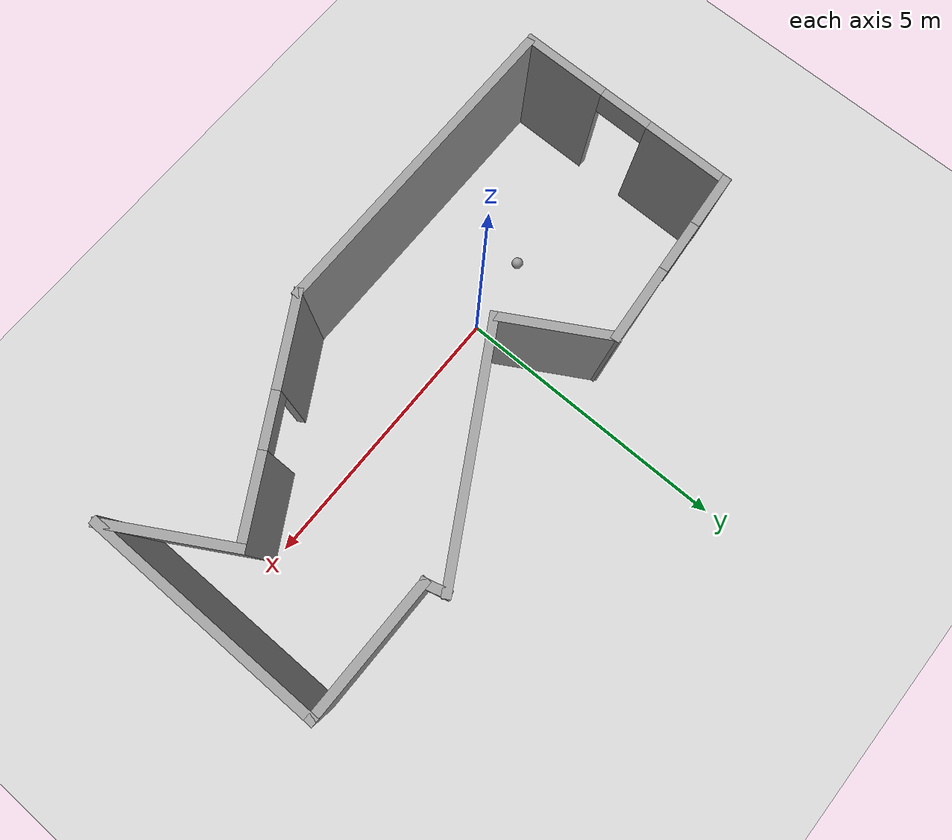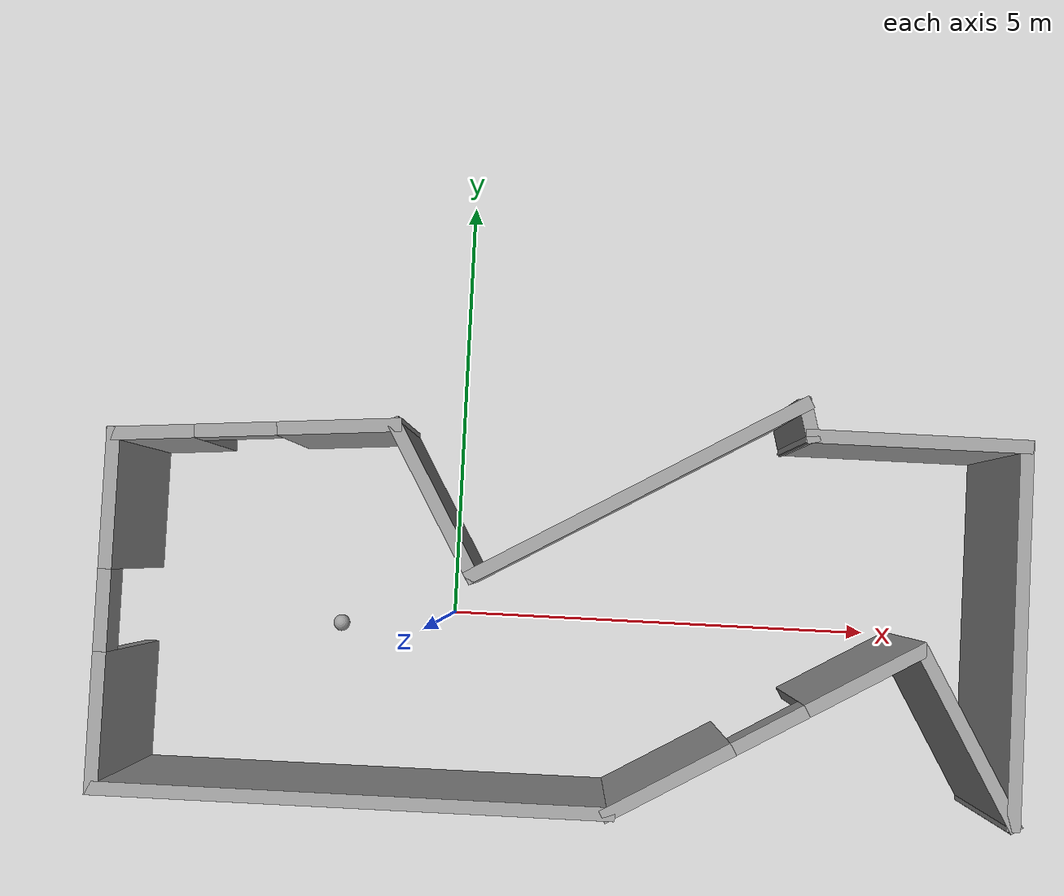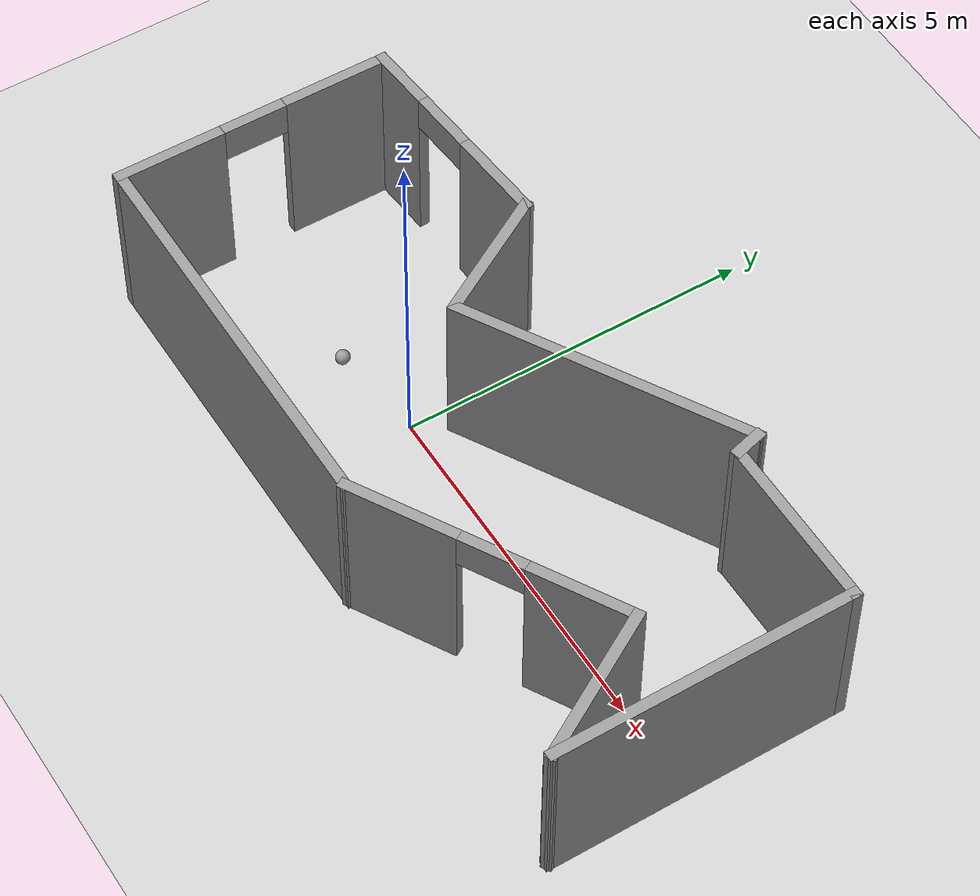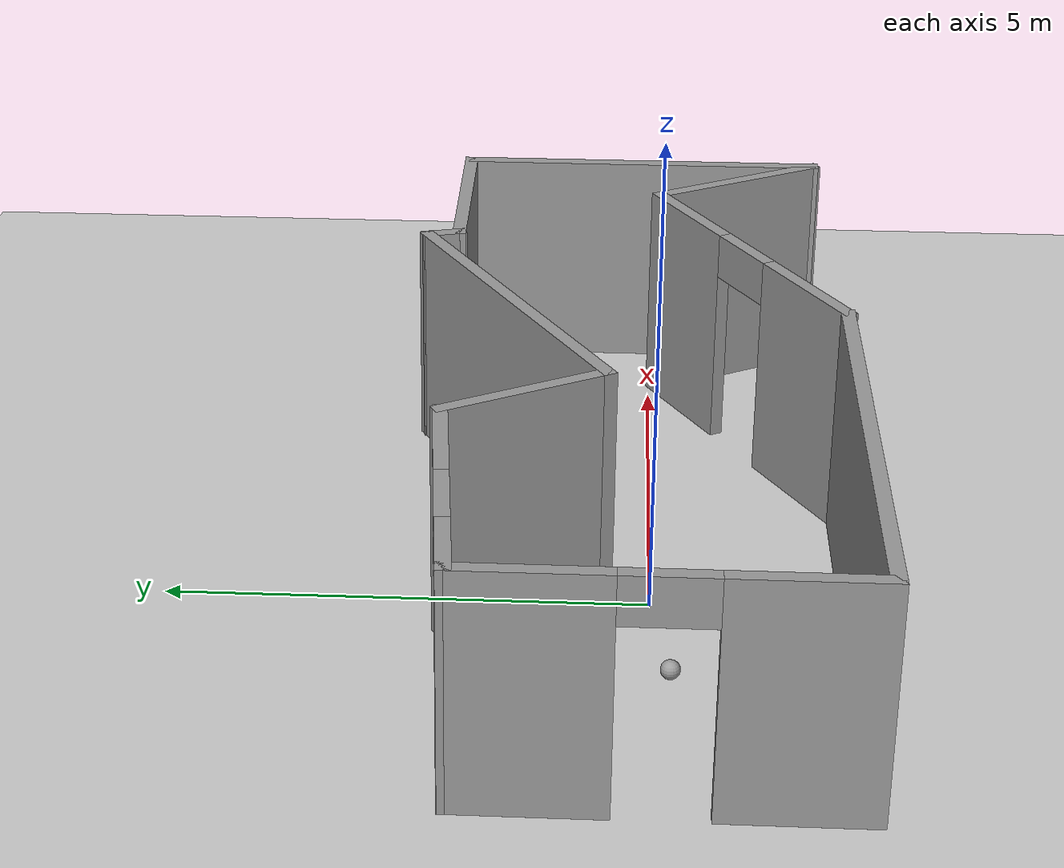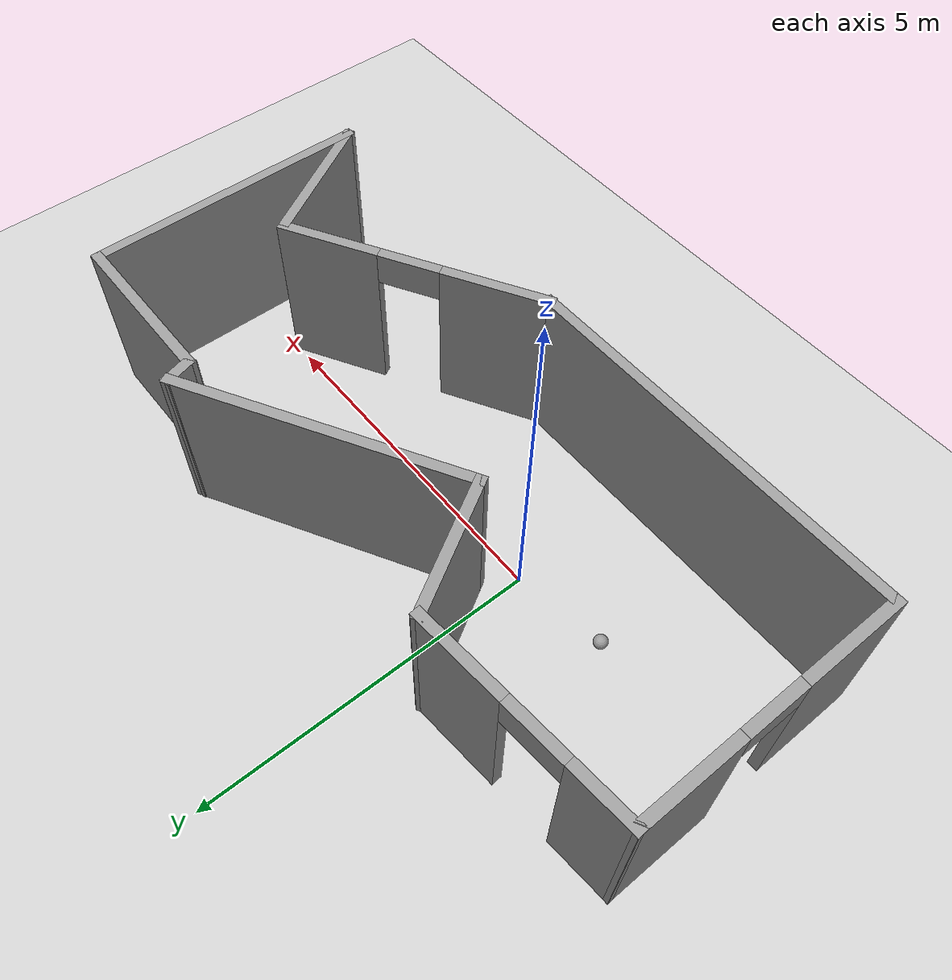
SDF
<sdf version="1.6">
 <world name="default">
  <light name="sun" type="directional">
   <pose>0 0 10 0 -0 0</pose>
   <diffuse>0.8 0.8 0.8 1</diffuse>
   <specular>0.2 0.2 0.2 1</specular>
   <attenuation>
    <range>1000</range>
    <constant>0.9</constant>
    <linear>0.01</linear>
    <quadratic>0.001</quadratic>
   </attenuation>
   <direction>-0.5 0.1 -0.9</direction>
  </light>
  <model name="ground_plane">
   <static>1</static>
   <link name="link">
    <collision name="collision">
     <geometry><plane><normal>0 0 1</normal><size>100 100</size></plane></geometry>
     <surface><friction><ode><mu>100</mu><mu2>50</mu2></ode></friction></surface>
    </collision>
    <visual name="visual">
     <cast_shadows>0</cast_shadows>
     <geometry><plane><normal>0 0 1</normal><size>100 100</size></plane></geometry>
     <material>
      <script><uri>file://media/materials/scripts/gazebo.material</uri><name>Gazebo/Grey</name></script>
     </material>
    </visual>
   </link>
  </model>
  <gravity>0 0 -9.8</gravity>
  <magnetic_field>6e-06 2.3e-05 -4.2e-05</magnetic_field>
  <atmosphere type="adiabatic"/>
  <physics name="default_physics" default="0" type="ode">
   <max_step_size>0.001</max_step_size>
   <real_time_factor>1</real_time_factor>
   <real_time_update_rate>1000</real_time_update_rate>
  </physics>
  <scene><ambient>0.4 0.4 0.4 1</ambient><background>0.7 0.7 0.7 1</background><shadows>1</shadows></scene>
  <spherical_coordinates>
   <surface_model>EARTH_WGS84</surface_model>
   <latitude_deg>0</latitude_deg>
   <longitude_deg>0</longitude_deg>
   <elevation>0</elevation>
   <heading_deg>0</heading_deg>
  </spherical_coordinates>
  <model name="walls-ay01">
   <pose>1.3119 0.269524 0 0 -0 0</pose>
   <link name="Wall_0">
    <pose>-5.00294 -0.34721 0 0 0 -1.5708</pose>
    <visual name="Wall_0_Visual_0">
     <pose>-1.2225 0 1.25 0 -0 0</pose>
     <geometry><box><size>1.555 0.15 2.5</size></box></geometry>
     <material>
      <script><uri>file://media/materials/scripts/gazebo.material</uri><name>Gazebo/Grey</name></script>
      <ambient>1 1 1 1</ambient>
     </material>
     <meta><layer>0</layer></meta>
    </visual>
    <collision name="Wall_0_Collision_0">
     <geometry><box><size>1.555 0.15 2.5</size></box></geometry>
     <pose>-1.2225 0 1.25 0 -0 0</pose>
    </collision>
    <visual name="Wall_0_Visual_1">
     <pose>1.2275 0 1.25 0 -0 0</pose>
     <geometry><box><size>1.545 0.15 2.5</size></box></geometry>
     <material>
      <script><uri>file://media/materials/scripts/gazebo.material</uri><name>Gazebo/Grey</name></script>
      <ambient>1 1 1 1</ambient>
     </material>
     <meta><layer>0</layer></meta>
    </visual>
    <collision name="Wall_0_Collision_1">
     <geometry><box><size>1.545 0.15 2.5</size></box></geometry>
     <pose>1.2275 0 1.25 0 -0 0</pose>
    </collision>
    <visual name="Wall_0_Visual_2">
     <pose>0.005 0 2.25 0 -0 0</pose>
     <geometry><box><size>0.9 0.15 0.5</size></box></geometry>
     <material>
      <script><uri>file://media/materials/scripts/gazebo.material</uri><name>Gazebo/Grey</name></script>
      <ambient>1 1 1 1</ambient>
     </material>
     <meta><layer>0</layer></meta>
    </visual>
    <collision name="Wall_0_Collision_2">
     <geometry><box><size>0.9 0.15 0.5</size></box></geometry>
     <pose>0.005 0 2.25 0 -0 0</pose>
    </collision>
   </link>
   <link name="Wall_1">
    <collision name="Wall_1_Collision">
     <geometry><box><size>5.75 0.15 2.5</size></box></geometry>
     <pose>0 0 1.25 0 -0 0</pose>
    </collision>
    <visual name="Wall_1_Visual">
     <pose>0 0 1.25 0 -0 0</pose>
     <geometry><box><size>5.75 0.15 2.5</size></box></geometry>
     <material>
      <script><uri>file://media/materials/scripts/gazebo.material</uri><name>Gazebo/Grey</name></script>
      <ambient>1 1 1 1</ambient>
     </material>
     <meta><layer>0</layer></meta>
    </visual>
    <pose>-2.20294 -2.27221 0 0 -0 0</pose>
   </link>
   <link name="Wall_2">
    <pose>2.26416 -1.30971 0 0 -0 0.523599</pose>
    <visual name="Wall_2_Visual_0">
     <pose>-1.1979 0 1.25 0 -0 0</pose>
     <geometry><box><size>1.60421 0.15 2.5</size></box></geometry>
     <material>
      <script><uri>file://media/materials/scripts/gazebo.material</uri><name>Gazebo/Grey</name></script>
      <ambient>1 1 1 1</ambient>
     </material>
     <meta><layer>0</layer></meta>
    </visual>
    <collision name="Wall_2_Collision_0">
     <geometry><box><size>1.60421 0.15 2.5</size></box></geometry>
     <pose>-1.1979 0 1.25 0 -0 0</pose>
    </collision>
    <visual name="Wall_2_Visual_1">
     <pose>1.2521 0 1.25 0 -0 0</pose>
     <geometry><box><size>1.49579 0.15 2.5</size></box></geometry>
     <material>
      <script><uri>file://media/materials/scripts/gazebo.material</uri><name>Gazebo/Grey</name></script>
      <ambient>1 1 1 1</ambient>
     </material>
     <meta><layer>0</layer></meta>
    </visual>
    <collision name="Wall_2_Collision_1">
     <geometry><box><size>1.49579 0.15 2.5</size></box></geometry>
     <pose>1.2521 0 1.25 0 -0 0</pose>
    </collision>
    <visual name="Wall_2_Visual_2">
     <pose>0.054205 0 2.25 0 -0 0</pose>
     <geometry><box><size>0.9 0.15 0.5</size></box></geometry>
     <material>
      <script><uri>file://media/materials/scripts/gazebo.material</uri><name>Gazebo/Grey</name></script>
      <ambient>1 1 1 1</ambient>
     </material>
     <meta><layer>0</layer></meta>
    </visual>
    <collision name="Wall_2_Collision_2">
     <geometry><box><size>0.9 0.15 0.5</size></box></geometry>
     <pose>0.054205 0 2.25 0 -0 0</pose>
    </collision>
   </link>
   <link name="Wall_3">
    <collision name="Wall_3_Collision">
     <geometry><box><size>2.25 0.15 2.5</size></box></geometry>
     <pose>0 0 1.25 0 -0 0</pose>
    </collision>
    <visual name="Wall_3_Visual">
     <pose>0 0 1.25 0 -0 0</pose>
     <geometry><box><size>2.25 0.15 2.5</size></box></geometry>
     <material>
      <script><uri>file://media/materials/scripts/gazebo.material</uri><name>Gazebo/Grey</name></script>
      <ambient>1 1 1 1</ambient>
     </material>
     <meta><layer>0</layer></meta>
    </visual>
    <pose>4.45626 -1.25654 0 0 0 -1.0472</pose>
   </link>
   <link name="Wall_4">
    <collision name="Wall_4_Collision">
     <geometry><box><size>4.25 0.15 2.5</size></box></geometry>
     <pose>0 0 1.25 0 -0 0</pose>
    </collision>
    <visual name="Wall_4_Visual">
     <pose>0 0 1.25 0 -0 0</pose>
     <geometry><box><size>4.25 0.15 2.5</size></box></geometry>
     <material>
      <script><uri>file://media/materials/scripts/gazebo.material</uri><name>Gazebo/Grey</name></script>
      <ambient>1 1 1 1</ambient>
     </material>
     <meta><layer>0</layer></meta>
    </visual>
    <pose>4.98126 -0.115864 0 0 -0 1.5708</pose>
   </link>
   <link name="Wall_5">
    <collision name="Wall_5_Collision">
     <geometry><box><size>2.5 0.15 2.5</size></box></geometry>
     <pose>0 0 1.25 0 -0 0</pose>
    </collision>
    <visual name="Wall_5_Visual">
     <pose>0 0 1.25 0 -0 0</pose>
     <geometry><box><size>2.5 0.15 2.5</size></box></geometry>
     <material>
      <script><uri>file://media/materials/scripts/gazebo.material</uri><name>Gazebo/Grey</name></script>
      <ambient>1 1 1 1</ambient>
     </material>
     <meta><layer>0</layer></meta>
    </visual>
    <pose>3.80626 1.93414 0 0 -0 3.14159</pose>
   </link>
   <link name="Wall_6">
    <collision name="Wall_6_Collision">
     <geometry><box><size>0.5 0.15 2.5</size></box></geometry>
     <pose>0 0 1.25 0 -0 0</pose>
    </collision>
    <visual name="Wall_6_Visual">
     <pose>0 0 1.25 0 -0 0</pose>
     <geometry><box><size>0.5 0.15 2.5</size></box></geometry>
     <material>
      <script><uri>file://media/materials/scripts/gazebo.material</uri><name>Gazebo/Grey</name></script>
      <ambient>1 1 1 1</ambient>
     </material>
     <meta><layer>0</layer></meta>
    </visual>
    <pose>2.58596 2.10317 0 0 -0 1.8326</pose>
   </link>
   <link name="Wall_7">
    <collision name="Wall_7_Collision">
     <geometry><box><size>4.25 0.15 2.5</size></box></geometry>
     <pose>0 0 1.25 0 -0 0</pose>
    </collision>
    <visual name="Wall_7_Visual">
     <pose>0 0 1.25 0 -0 0</pose>
     <geometry><box><size>4.25 0.15 2.5</size></box></geometry>
     <material>
      <script><uri>file://media/materials/scripts/gazebo.material</uri><name>Gazebo/Grey</name></script>
      <ambient>1 1 1 1</ambient>
     </material>
     <meta><layer>0</layer></meta>
    </visual>
    <pose>0.765318 1.24721 0 0 0 -2.61799</pose>
   </link>
   <link name="Wall_8">
    <collision name="Wall_8_Collision">
     <geometry><box><size>2 0.15 2.5</size></box></geometry>
     <pose>0 0 1.25 0 -0 0</pose>
    </collision>
    <visual name="Wall_8_Visual">
     <pose>0 0 1.25 0 -0 0</pose>
     <geometry><box><size>2 0.15 2.5</size></box></geometry>
     <material>
      <script><uri>file://media/materials/scripts/gazebo.material</uri><name>Gazebo/Grey</name></script>
      <ambient>1 1 1 1</ambient>
     </material>
     <meta><layer>0</layer></meta>
    </visual>
    <pose>-1.47253 1.02328 0 0 -0 2.0944</pose>
   </link>
   <link name="Wall_9">
    <pose>-3.46899 1.70107 0 0 0 -3.0614</pose>
    <visual name="Wall_9_Visual_0">
     <pose>-0.93097 0 1.25 0 -0 0</pose>
     <geometry><box><size>1.36586 0.15 2.5</size></box></geometry>
     <material>
      <script><uri>file://media/materials/scripts/gazebo.material</uri><name>Gazebo/Grey</name></script>
      <ambient>1 1 1 1</ambient>
     </material>
     <meta><layer>0</layer></meta>
    </visual>
    <collision name="Wall_9_Collision_0">
     <geometry><box><size>1.36586 0.15 2.5</size></box></geometry>
     <pose>-0.93097 0 1.25 0 -0 0</pose>
    </collision>
    <visual name="Wall_9_Visual_1">
     <pose>1.13293 0 1.25 0 -0 0</pose>
     <geometry><box><size>0.961941 0.15 2.5</size></box></geometry>
     <material>
      <script><uri>file://media/materials/scripts/gazebo.material</uri><name>Gazebo/Grey</name></script>
      <ambient>1 1 1 1</ambient>
     </material>
     <meta><layer>0</layer></meta>
    </visual>
    <collision name="Wall_9_Collision_1">
     <geometry><box><size>0.961941 0.15 2.5</size></box></geometry>
     <pose>1.13293 0 1.25 0 -0 0</pose>
    </collision>
    <visual name="Wall_9_Visual_2">
     <pose>0.201959 0 2.25 0 -0 0</pose>
     <geometry><box><size>0.9 0.15 0.5</size></box></geometry>
     <material>
      <script><uri>file://media/materials/scripts/gazebo.material</uri><name>Gazebo/Grey</name></script>
      <ambient>1 1 1 1</ambient>
     </material>
     <meta><layer>0</layer></meta>
    </visual>
    <collision name="Wall_9_Collision_2">
     <geometry><box><size>0.9 0.15 0.5</size></box></geometry>
     <pose>0.201959 0 2.25 0 -0 0</pose>
    </collision>
   </link>
   <static>1</static>
  </model>
  <model name="my_ball">
   <link name="link_0">
    <inertial>
     <mass>1</mass>
     <inertia><ixx>0.1</ixx><ixy>0</ixy><ixz>0</ixz><iyy>0.1</iyy><iyz>0</iyz><izz>0.1</izz></inertia>
    </inertial>
    <visual name="visual">
     <geometry><sphere><radius>0.1</radius></sphere></geometry>
     <material>
      <lighting>1</lighting>
      <script><uri>file://media/materials/scripts/gazebo.material</uri><name>Gazebo/Grey</name></script>
      <ambient>1 1 1 1</ambient>
      <diffuse>1 1 1 1</diffuse>
      <specular>1 1 1 1</specular>
      <emissive>1 1 1 1</emissive>
      <shader type="vertex"><normal_map>__default__</normal_map></shader>
     </material>
    </visual>
    <collision name="collision">
     <geometry><sphere><radius>0.1</radius></sphere></geometry>
     <surface>
      <friction>
       <ode><mu>1</mu><mu2>1</mu2><fdir1>0 0 0</fdir1><slip1>0</slip1><slip2>0</slip2></ode>
       <torsional>
        <coefficient>1</coefficient>
        <patch_radius>0</patch_radius>
        <surface_radius>0</surface_radius>
        <use_patch_radius>1</use_patch_radius>
        <ode><slip>0</slip></ode>
       </torsional>
      </friction>
      <bounce><restitution_coefficient>0</restitution_coefficient><threshold>1e+06</threshold></bounce>
      <contact>
       <collide_without_contact>0</collide_without_contact>
       <collide_without_contact_bitmask>1</collide_without_contact_bitmask>
       <collide_bitmask>1</collide_bitmask>
       <ode>
        <soft_cfm>0</soft_cfm>
        <soft_erp>0.2</soft_erp>
        <kp>1e+13</kp>
        <kd>1</kd>
        <max_vel>0.01</max_vel>
        <min_depth>0</min_depth>
       </ode>
       <bullet>
        <split_impulse>1</split_impulse>
        <split_impulse_penetration_threshold>-0.01</split_impulse_penetration_threshold>
        <soft_cfm>0</soft_cfm>
        <soft_erp>0.2</soft_erp>
        <kp>1e+13</kp>
        <kd>1</kd>
       </bullet>
      </contact>
     </surface>
    </collision>
   </link>
   <static>0</static>
   <pose>-1.37389 -0.193713 0.1 0 -0 0</pose>
  </model>
 </world>
</sdf>
